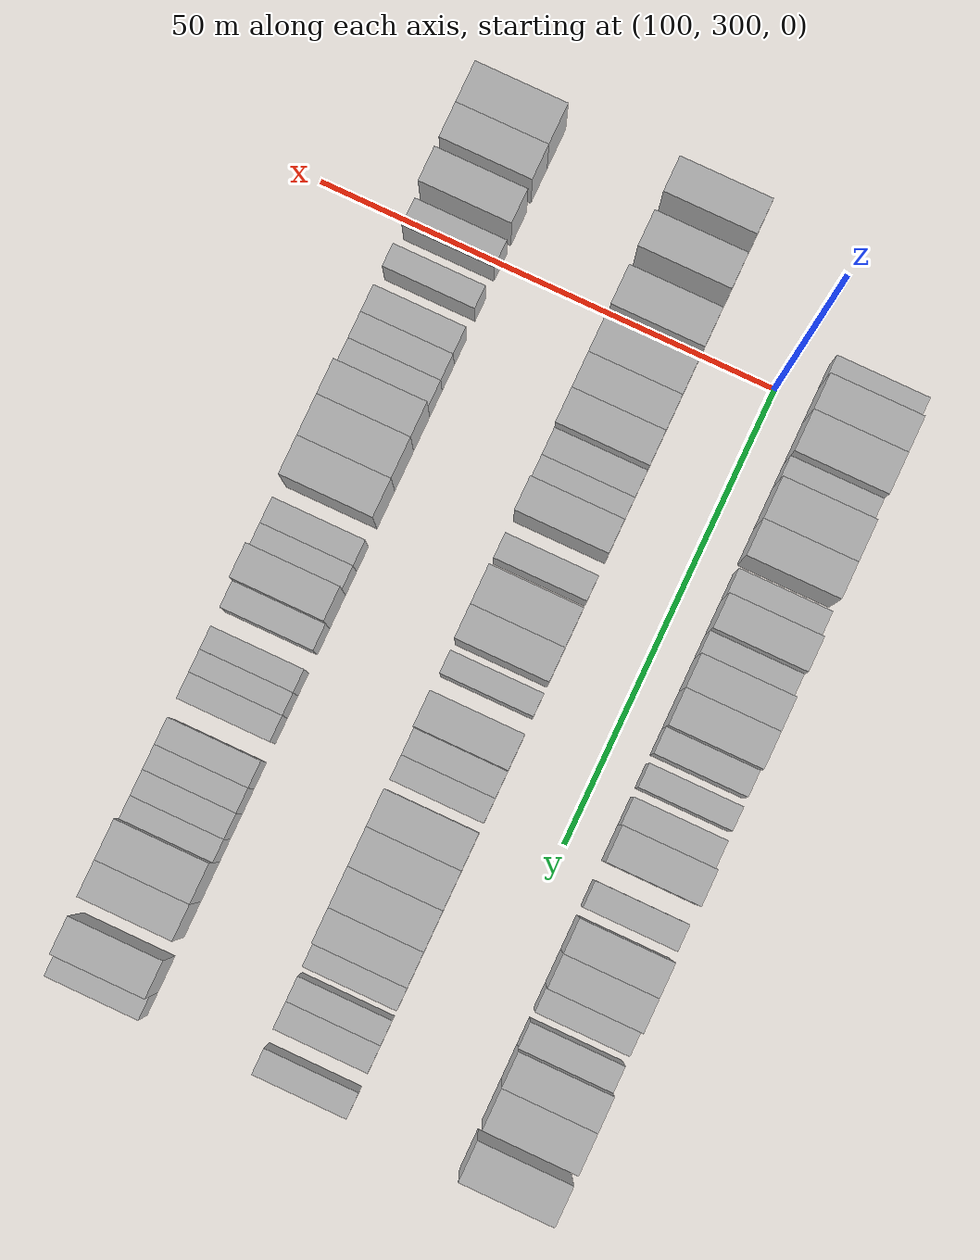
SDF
<sdf version="1.6">
 <world name="default">
  <model name="building_708">
   <static>1</static>
   <pose>91.0000 296.8521 0 0.000000 0.000000 0.000000</pose>
   <link name="link">
    <pose>0 0 3.00 0 0 0</pose>
    <collision name="collision"><geometry><box><size>10.0000 2.5621 6.0000</size></box></geometry></collision>
    <visual name="visual">
     <cast_shadows>0</cast_shadows>
     <geometry><box><size>10.0000 2.5621 6.0000</size></box></geometry>
     <material>
      <script>
       <uri>model://HANNAS_wall/materials/scripts</uri>
       <uri>model://HANNAS_wall/materials/textures</uri>
       <name>vrc/HANNAS_wall</name>
      </script>
     </material>
    </visual>
   </link>
  </model>
  <model name="building_709">
   <static>1</static>
   <pose>91.0000 300.0665 0 0.000000 0.000000 0.000000</pose>
   <link name="link">
    <pose>0 0 4.50 0 0 0</pose>
    <collision name="collision"><geometry><box><size>10.0000 3.8667 9.0000</size></box></geometry></collision>
    <visual name="visual">
     <cast_shadows>0</cast_shadows>
     <geometry><box><size>10.0000 3.8667 9.0000</size></box></geometry>
     <material>
      <script>
       <uri>model://HANNAS_wall/materials/scripts</uri>
       <uri>model://HANNAS_wall/materials/textures</uri>
       <name>vrc/HANNAS_wall</name>
      </script>
     </material>
    </visual>
   </link>
  </model>
  <model name="building_710">
   <static>1</static>
   <pose>91.0000 304.2477 0 0.000000 0.000000 0.000000</pose>
   <link name="link">
    <pose>0 0 4.50 0 0 0</pose>
    <collision name="collision"><geometry><box><size>10.0000 4.4958 9.0000</size></box></geometry></collision>
    <visual name="visual">
     <cast_shadows>0</cast_shadows>
     <geometry><box><size>10.0000 4.4958 9.0000</size></box></geometry>
     <material>
      <script>
       <uri>model://HANNAS_wall/materials/scripts</uri>
       <uri>model://HANNAS_wall/materials/textures</uri>
       <name>vrc/HANNAS_wall</name>
      </script>
     </material>
    </visual>
   </link>
  </model>
  <model name="building_711">
   <static>1</static>
   <pose>91.0000 307.8393 0 0.000000 0.000000 0.000000</pose>
   <link name="link">
    <pose>0 0 3.00 0 0 0</pose>
    <collision name="collision"><geometry><box><size>10.0000 2.6875 6.0000</size></box></geometry></collision>
    <visual name="visual">
     <cast_shadows>0</cast_shadows>
     <geometry><box><size>10.0000 2.6875 6.0000</size></box></geometry>
     <material>
      <script>
       <uri>model://HANNAS_wall/materials/scripts</uri>
       <uri>model://HANNAS_wall/materials/textures</uri>
       <name>vrc/HANNAS_wall</name>
      </script>
     </material>
    </visual>
   </link>
  </model>
  <model name="building_712">
   <static>1</static>
   <pose>91.0000 311.4304 0 0.000000 0.000000 0.000000</pose>
   <link name="link">
    <pose>0 0 4.50 0 0 0</pose>
    <collision name="collision"><geometry><box><size>10.0000 4.4946 9.0000</size></box></geometry></collision>
    <visual name="visual">
     <cast_shadows>0</cast_shadows>
     <geometry><box><size>10.0000 4.4946 9.0000</size></box></geometry>
     <material>
      <script>
       <uri>model://HANNAS_wall/materials/scripts</uri>
       <uri>model://HANNAS_wall/materials/textures</uri>
       <name>vrc/HANNAS_wall</name>
      </script>
     </material>
    </visual>
   </link>
  </model>
  <model name="building_713">
   <static>1</static>
   <pose>91.0000 315.6574 0 0.000000 0.000000 0.000000</pose>
   <link name="link">
    <pose>0 0 4.50 0 0 0</pose>
    <collision name="collision"><geometry><box><size>10.0000 3.9595 9.0000</size></box></geometry></collision>
    <visual name="visual">
     <cast_shadows>0</cast_shadows>
     <geometry><box><size>10.0000 3.9595 9.0000</size></box></geometry>
     <material>
      <script>
       <uri>model://HANNAS_wall/materials/scripts</uri>
       <uri>model://HANNAS_wall/materials/textures</uri>
       <name>vrc/HANNAS_wall</name>
      </script>
     </material>
    </visual>
   </link>
  </model>
  <model name="building_714">
   <static>1</static>
   <pose>91.0000 320.1092 0 0.000000 0.000000 0.000000</pose>
   <link name="link">
    <pose>0 0 3.00 0 0 0</pose>
    <collision name="collision"><geometry><box><size>10.0000 2.9441 6.0000</size></box></geometry></collision>
    <visual name="visual">
     <cast_shadows>0</cast_shadows>
     <geometry><box><size>10.0000 2.9441 6.0000</size></box></geometry>
     <material>
      <script>
       <uri>model://HANNAS_wall/materials/scripts</uri>
       <uri>model://HANNAS_wall/materials/textures</uri>
       <name>vrc/HANNAS_wall</name>
      </script>
     </material>
    </visual>
   </link>
  </model>
  <model name="building_715">
   <static>1</static>
   <pose>91.0000 323.4557 0 0.000000 0.000000 0.000000</pose>
   <link name="link">
    <pose>0 0 4.50 0 0 0</pose>
    <collision name="collision"><geometry><box><size>10.0000 3.7491 9.0000</size></box></geometry></collision>
    <visual name="visual">
     <cast_shadows>0</cast_shadows>
     <geometry><box><size>10.0000 3.7491 9.0000</size></box></geometry>
     <material>
      <script>
       <uri>model://HANNAS_wall/materials/scripts</uri>
       <uri>model://HANNAS_wall/materials/textures</uri>
       <name>vrc/HANNAS_wall</name>
      </script>
     </material>
    </visual>
   </link>
  </model>
  <model name="building_716">
   <static>1</static>
   <pose>91.0000 326.6415 0 0.000000 0.000000 0.000000</pose>
   <link name="link">
    <pose>0 0 3.00 0 0 0</pose>
    <collision name="collision"><geometry><box><size>10.0000 2.6225 6.0000</size></box></geometry></collision>
    <visual name="visual">
     <cast_shadows>0</cast_shadows>
     <geometry><box><size>10.0000 2.6225 6.0000</size></box></geometry>
     <material>
      <script>
       <uri>model://HANNAS_wall/materials/scripts</uri>
       <uri>model://HANNAS_wall/materials/textures</uri>
       <name>vrc/HANNAS_wall</name>
      </script>
     </material>
    </visual>
   </link>
  </model>
  <model name="building_717">
   <static>1</static>
   <pose>91.0000 329.7681 0 0.000000 0.000000 0.000000</pose>
   <link name="link">
    <pose>0 0 4.50 0 0 0</pose>
    <collision name="collision"><geometry><box><size>10.0000 3.6307 9.0000</size></box></geometry></collision>
    <visual name="visual">
     <cast_shadows>0</cast_shadows>
     <geometry><box><size>10.0000 3.6307 9.0000</size></box></geometry>
     <material>
      <script>
       <uri>model://HANNAS_wall/materials/scripts</uri>
       <uri>model://HANNAS_wall/materials/textures</uri>
       <name>vrc/HANNAS_wall</name>
      </script>
     </material>
    </visual>
   </link>
  </model>
  <model name="building_718">
   <static>1</static>
   <pose>91.0000 333.5781 0 0.000000 0.000000 0.000000</pose>
   <link name="link">
    <pose>0 0 4.50 0 0 0</pose>
    <collision name="collision"><geometry><box><size>10.0000 3.9893 9.0000</size></box></geometry></collision>
    <visual name="visual">
     <cast_shadows>0</cast_shadows>
     <geometry><box><size>10.0000 3.9893 9.0000</size></box></geometry>
     <material>
      <script>
       <uri>model://HANNAS_wall/materials/scripts</uri>
       <uri>model://HANNAS_wall/materials/textures</uri>
       <name>vrc/HANNAS_wall</name>
      </script>
     </material>
    </visual>
   </link>
  </model>
  <model name="building_719">
   <static>1</static>
   <pose>91.0000 337.0053 0 0.000000 0.000000 0.000000</pose>
   <link name="link">
    <pose>0 0 3.00 0 0 0</pose>
    <collision name="collision"><geometry><box><size>10.0000 2.8651 6.0000</size></box></geometry></collision>
    <visual name="visual">
     <cast_shadows>0</cast_shadows>
     <geometry><box><size>10.0000 2.8651 6.0000</size></box></geometry>
     <material>
      <script>
       <uri>model://HANNAS_wall/materials/scripts</uri>
       <uri>model://HANNAS_wall/materials/textures</uri>
       <name>vrc/HANNAS_wall</name>
      </script>
     </material>
    </visual>
   </link>
  </model>
  <model name="building_720">
   <static>1</static>
   <pose>91.0000 340.7299 0 0.000000 0.000000 0.000000</pose>
   <link name="link">
    <pose>0 0 3.00 0 0 0</pose>
    <collision name="collision"><geometry><box><size>10.0000 2.5840 6.0000</size></box></geometry></collision>
    <visual name="visual">
     <cast_shadows>0</cast_shadows>
     <geometry><box><size>10.0000 2.5840 6.0000</size></box></geometry>
     <material>
      <script>
       <uri>model://HANNAS_wall/materials/scripts</uri>
       <uri>model://HANNAS_wall/materials/textures</uri>
       <name>vrc/HANNAS_wall</name>
      </script>
     </material>
    </visual>
   </link>
  </model>
  <model name="building_721">
   <static>1</static>
   <pose>91.0000 344.5193 0 0.000000 0.000000 0.000000</pose>
   <link name="link">
    <pose>0 0 3.00 0 0 0</pose>
    <collision name="collision"><geometry><box><size>10.0000 2.9948 6.0000</size></box></geometry></collision>
    <visual name="visual">
     <cast_shadows>0</cast_shadows>
     <geometry><box><size>10.0000 2.9948 6.0000</size></box></geometry>
     <material>
      <script>
       <uri>model://HANNAS_wall/materials/scripts</uri>
       <uri>model://HANNAS_wall/materials/textures</uri>
       <name>vrc/HANNAS_wall</name>
      </script>
     </material>
    </visual>
   </link>
  </model>
  <model name="building_722">
   <static>1</static>
   <pose>91.0000 347.9449 0 0.000000 0.000000 0.000000</pose>
   <link name="link">
    <pose>0 0 4.50 0 0 0</pose>
    <collision name="collision"><geometry><box><size>10.0000 3.8563 9.0000</size></box></geometry></collision>
    <visual name="visual">
     <cast_shadows>0</cast_shadows>
     <geometry><box><size>10.0000 3.8563 9.0000</size></box></geometry>
     <material>
      <script>
       <uri>model://HANNAS_wall/materials/scripts</uri>
       <uri>model://HANNAS_wall/materials/textures</uri>
       <name>vrc/HANNAS_wall</name>
      </script>
     </material>
    </visual>
   </link>
  </model>
  <model name="building_723">
   <static>1</static>
   <pose>91.0000 353.2836 0 0.000000 0.000000 0.000000</pose>
   <link name="link">
    <pose>0 0 3.00 0 0 0</pose>
    <collision name="collision"><geometry><box><size>10.0000 2.8212 6.0000</size></box></geometry></collision>
    <visual name="visual">
     <cast_shadows>0</cast_shadows>
     <geometry><box><size>10.0000 2.8212 6.0000</size></box></geometry>
     <material>
      <script>
       <uri>model://HANNAS_wall/materials/scripts</uri>
       <uri>model://HANNAS_wall/materials/textures</uri>
       <name>vrc/HANNAS_wall</name>
      </script>
     </material>
    </visual>
   </link>
  </model>
  <model name="building_724">
   <static>1</static>
   <pose>91.0000 357.5374 0 0.000000 0.000000 0.000000</pose>
   <link name="link">
    <pose>0 0 4.50 0 0 0</pose>
    <collision name="collision"><geometry><box><size>10.0000 3.6864 9.0000</size></box></geometry></collision>
    <visual name="visual">
     <cast_shadows>0</cast_shadows>
     <geometry><box><size>10.0000 3.6864 9.0000</size></box></geometry>
     <material>
      <script>
       <uri>model://HANNAS_wall/materials/scripts</uri>
       <uri>model://HANNAS_wall/materials/textures</uri>
       <name>vrc/HANNAS_wall</name>
      </script>
     </material>
    </visual>
   </link>
  </model>
  <model name="building_725">
   <static>1</static>
   <pose>91.0000 361.1887 0 0.000000 0.000000 0.000000</pose>
   <link name="link">
    <pose>0 0 4.50 0 0 0</pose>
    <collision name="collision"><geometry><box><size>10.0000 3.6162 9.0000</size></box></geometry></collision>
    <visual name="visual">
     <cast_shadows>0</cast_shadows>
     <geometry><box><size>10.0000 3.6162 9.0000</size></box></geometry>
     <material>
      <script>
       <uri>model://HANNAS_wall/materials/scripts</uri>
       <uri>model://HANNAS_wall/materials/textures</uri>
       <name>vrc/HANNAS_wall</name>
      </script>
     </material>
    </visual>
   </link>
  </model>
  <model name="building_726">
   <static>1</static>
   <pose>91.0000 364.3347 0 0.000000 0.000000 0.000000</pose>
   <link name="link">
    <pose>0 0 3.00 0 0 0</pose>
    <collision name="collision"><geometry><box><size>10.0000 2.6757 6.0000</size></box></geometry></collision>
    <visual name="visual">
     <cast_shadows>0</cast_shadows>
     <geometry><box><size>10.0000 2.6757 6.0000</size></box></geometry>
     <material>
      <script>
       <uri>model://HANNAS_wall/materials/scripts</uri>
       <uri>model://HANNAS_wall/materials/textures</uri>
       <name>vrc/HANNAS_wall</name>
      </script>
     </material>
    </visual>
   </link>
  </model>
  <model name="building_727">
   <static>1</static>
   <pose>91.0000 368.0712 0 0.000000 0.000000 0.000000</pose>
   <link name="link">
    <pose>0 0 3.00 0 0 0</pose>
    <collision name="collision"><geometry><box><size>10.0000 2.7973 6.0000</size></box></geometry></collision>
    <visual name="visual">
     <cast_shadows>0</cast_shadows>
     <geometry><box><size>10.0000 2.7973 6.0000</size></box></geometry>
     <material>
      <script>
       <uri>model://HANNAS_wall/materials/scripts</uri>
       <uri>model://HANNAS_wall/materials/textures</uri>
       <name>vrc/HANNAS_wall</name>
      </script>
     </material>
    </visual>
   </link>
  </model>
  <model name="building_728">
   <static>1</static>
   <pose>91.0000 371.3558 0 0.000000 0.000000 0.000000</pose>
   <link name="link">
    <pose>0 0 4.50 0 0 0</pose>
    <collision name="collision"><geometry><box><size>10.0000 3.7719 9.0000</size></box></geometry></collision>
    <visual name="visual">
     <cast_shadows>0</cast_shadows>
     <geometry><box><size>10.0000 3.7719 9.0000</size></box></geometry>
     <material>
      <script>
       <uri>model://HANNAS_wall/materials/scripts</uri>
       <uri>model://HANNAS_wall/materials/textures</uri>
       <name>vrc/HANNAS_wall</name>
      </script>
     </material>
    </visual>
   </link>
  </model>
  <model name="building_729">
   <static>1</static>
   <pose>91.0000 375.4161 0 0.000000 0.000000 0.000000</pose>
   <link name="link">
    <pose>0 0 4.50 0 0 0</pose>
    <collision name="collision"><geometry><box><size>10.0000 4.3486 9.0000</size></box></geometry></collision>
    <visual name="visual">
     <cast_shadows>0</cast_shadows>
     <geometry><box><size>10.0000 4.3486 9.0000</size></box></geometry>
     <material>
      <script>
       <uri>model://HANNAS_wall/materials/scripts</uri>
       <uri>model://HANNAS_wall/materials/textures</uri>
       <name>vrc/HANNAS_wall</name>
      </script>
     </material>
    </visual>
   </link>
  </model>
  <model name="building_730">
   <static>1</static>
   <pose>91.0000 380.7305 0 0.000000 0.000000 0.000000</pose>
   <link name="link">
    <pose>0 0 4.50 0 0 0</pose>
    <collision name="collision"><geometry><box><size>10.0000 4.2802 9.0000</size></box></geometry></collision>
    <visual name="visual">
     <cast_shadows>0</cast_shadows>
     <geometry><box><size>10.0000 4.2802 9.0000</size></box></geometry>
     <material>
      <script>
       <uri>model://HANNAS_wall/materials/scripts</uri>
       <uri>model://HANNAS_wall/materials/textures</uri>
       <name>vrc/HANNAS_wall</name>
      </script>
     </material>
    </visual>
   </link>
  </model>
  <model name="building_896">
   <static>1</static>
   <pose>113.0000 286.8358 0 0.000000 0.000000 0.000000</pose>
   <link name="link">
    <pose>0 0 4.50 0 0 0</pose>
    <collision name="collision"><geometry><box><size>10.0000 3.8549 9.0000</size></box></geometry></collision>
    <visual name="visual">
     <cast_shadows>0</cast_shadows>
     <geometry><box><size>10.0000 3.8549 9.0000</size></box></geometry>
     <material>
      <script>
       <uri>model://HANNAS_wall/materials/scripts</uri>
       <uri>model://HANNAS_wall/materials/textures</uri>
       <name>vrc/HANNAS_wall</name>
      </script>
     </material>
    </visual>
   </link>
  </model>
  <model name="building_897">
   <static>1</static>
   <pose>113.0000 292.7214 0 0.000000 0.000000 0.000000</pose>
   <link name="link">
    <pose>0 0 4.50 0 0 0</pose>
    <collision name="collision"><geometry><box><size>10.0000 3.9163 9.0000</size></box></geometry></collision>
    <visual name="visual">
     <cast_shadows>0</cast_shadows>
     <geometry><box><size>10.0000 3.9163 9.0000</size></box></geometry>
     <material>
      <script>
       <uri>model://HANNAS_wall/materials/scripts</uri>
       <uri>model://HANNAS_wall/materials/textures</uri>
       <name>vrc/HANNAS_wall</name>
      </script>
     </material>
    </visual>
   </link>
  </model>
  <model name="building_898">
   <static>1</static>
   <pose>113.0000 298.8167 0 0.000000 0.000000 0.000000</pose>
   <link name="link">
    <pose>0 0 4.50 0 0 0</pose>
    <collision name="collision"><geometry><box><size>10.0000 4.2744 9.0000</size></box></geometry></collision>
    <visual name="visual">
     <cast_shadows>0</cast_shadows>
     <geometry><box><size>10.0000 4.2744 9.0000</size></box></geometry>
     <material>
      <script>
       <uri>model://HANNAS_wall/materials/scripts</uri>
       <uri>model://HANNAS_wall/materials/textures</uri>
       <name>vrc/HANNAS_wall</name>
      </script>
     </material>
    </visual>
   </link>
  </model>
  <model name="building_899">
   <static>1</static>
   <pose>113.0000 304.0137 0 0.000000 0.000000 0.000000</pose>
   <link name="link">
    <pose>0 0 4.50 0 0 0</pose>
    <collision name="collision"><geometry><box><size>10.0000 4.1195 9.0000</size></box></geometry></collision>
    <visual name="visual">
     <cast_shadows>0</cast_shadows>
     <geometry><box><size>10.0000 4.1195 9.0000</size></box></geometry>
     <material>
      <script>
       <uri>model://HANNAS_wall/materials/scripts</uri>
       <uri>model://HANNAS_wall/materials/textures</uri>
       <name>vrc/HANNAS_wall</name>
      </script>
     </material>
    </visual>
   </link>
  </model>
  <model name="building_900">
   <static>1</static>
   <pose>113.0000 307.9884 0 0.000000 0.000000 0.000000</pose>
   <link name="link">
    <pose>0 0 4.50 0 0 0</pose>
    <collision name="collision"><geometry><box><size>10.0000 3.8298 9.0000</size></box></geometry></collision>
    <visual name="visual">
     <cast_shadows>0</cast_shadows>
     <geometry><box><size>10.0000 3.8298 9.0000</size></box></geometry>
     <material>
      <script>
       <uri>model://HANNAS_wall/materials/scripts</uri>
       <uri>model://HANNAS_wall/materials/textures</uri>
       <name>vrc/HANNAS_wall</name>
      </script>
     </material>
    </visual>
   </link>
  </model>
  <model name="building_901">
   <static>1</static>
   <pose>113.0000 311.7919 0 0.000000 0.000000 0.000000</pose>
   <link name="link">
    <pose>0 0 4.50 0 0 0</pose>
    <collision name="collision"><geometry><box><size>10.0000 3.7772 9.0000</size></box></geometry></collision>
    <visual name="visual">
     <cast_shadows>0</cast_shadows>
     <geometry><box><size>10.0000 3.7772 9.0000</size></box></geometry>
     <material>
      <script>
       <uri>model://HANNAS_wall/materials/scripts</uri>
       <uri>model://HANNAS_wall/materials/textures</uri>
       <name>vrc/HANNAS_wall</name>
      </script>
     </material>
    </visual>
   </link>
  </model>
  <model name="building_902">
   <static>1</static>
   <pose>113.0000 315.1520 0 0.000000 0.000000 0.000000</pose>
   <link name="link">
    <pose>0 0 3.00 0 0 0</pose>
    <collision name="collision"><geometry><box><size>10.0000 2.9431 6.0000</size></box></geometry></collision>
    <visual name="visual">
     <cast_shadows>0</cast_shadows>
     <geometry><box><size>10.0000 2.9431 6.0000</size></box></geometry>
     <material>
      <script>
       <uri>model://HANNAS_wall/materials/scripts</uri>
       <uri>model://HANNAS_wall/materials/textures</uri>
       <name>vrc/HANNAS_wall</name>
      </script>
     </material>
    </visual>
   </link>
  </model>
  <model name="building_903">
   <static>1</static>
   <pose>113.0000 318.0092 0 0.000000 0.000000 0.000000</pose>
   <link name="link">
    <pose>0 0 3.00 0 0 0</pose>
    <collision name="collision"><geometry><box><size>10.0000 2.7714 6.0000</size></box></geometry></collision>
    <visual name="visual">
     <cast_shadows>0</cast_shadows>
     <geometry><box><size>10.0000 2.7714 6.0000</size></box></geometry>
     <material>
      <script>
       <uri>model://HANNAS_wall/materials/scripts</uri>
       <uri>model://HANNAS_wall/materials/textures</uri>
       <name>vrc/HANNAS_wall</name>
      </script>
     </material>
    </visual>
   </link>
  </model>
  <model name="building_904">
   <static>1</static>
   <pose>113.0000 321.2205 0 0.000000 0.000000 0.000000</pose>
   <link name="link">
    <pose>0 0 4.50 0 0 0</pose>
    <collision name="collision"><geometry><box><size>10.0000 3.6511 9.0000</size></box></geometry></collision>
    <visual name="visual">
     <cast_shadows>0</cast_shadows>
     <geometry><box><size>10.0000 3.6511 9.0000</size></box></geometry>
     <material>
      <script>
       <uri>model://HANNAS_wall/materials/scripts</uri>
       <uri>model://HANNAS_wall/materials/textures</uri>
       <name>vrc/HANNAS_wall</name>
      </script>
     </material>
    </visual>
   </link>
  </model>
  <model name="building_905">
   <static>1</static>
   <pose>113.0000 326.4089 0 0.000000 0.000000 0.000000</pose>
   <link name="link">
    <pose>0 0 3.00 0 0 0</pose>
    <collision name="collision"><geometry><box><size>10.0000 2.7259 6.0000</size></box></geometry></collision>
    <visual name="visual">
     <cast_shadows>0</cast_shadows>
     <geometry><box><size>10.0000 2.7259 6.0000</size></box></geometry>
     <material>
      <script>
       <uri>model://HANNAS_wall/materials/scripts</uri>
       <uri>model://HANNAS_wall/materials/textures</uri>
       <name>vrc/HANNAS_wall</name>
      </script>
     </material>
    </visual>
   </link>
  </model>
  <model name="building_906">
   <static>1</static>
   <pose>113.0000 330.8879 0 0.000000 0.000000 0.000000</pose>
   <link name="link">
    <pose>0 0 4.50 0 0 0</pose>
    <collision name="collision"><geometry><box><size>10.0000 4.2319 9.0000</size></box></geometry></collision>
    <visual name="visual">
     <cast_shadows>0</cast_shadows>
     <geometry><box><size>10.0000 4.2319 9.0000</size></box></geometry>
     <material>
      <script>
       <uri>model://HANNAS_wall/materials/scripts</uri>
       <uri>model://HANNAS_wall/materials/textures</uri>
       <name>vrc/HANNAS_wall</name>
      </script>
     </material>
    </visual>
   </link>
  </model>
  <model name="building_907">
   <static>1</static>
   <pose>113.0000 334.8253 0 0.000000 0.000000 0.000000</pose>
   <link name="link">
    <pose>0 0 4.50 0 0 0</pose>
    <collision name="collision"><geometry><box><size>10.0000 3.6429 9.0000</size></box></geometry></collision>
    <visual name="visual">
     <cast_shadows>0</cast_shadows>
     <geometry><box><size>10.0000 3.6429 9.0000</size></box></geometry>
     <material>
      <script>
       <uri>model://HANNAS_wall/materials/scripts</uri>
       <uri>model://HANNAS_wall/materials/textures</uri>
       <name>vrc/HANNAS_wall</name>
      </script>
     </material>
    </visual>
   </link>
  </model>
  <model name="building_908">
   <static>1</static>
   <pose>113.0000 338.8871 0 0.000000 0.000000 0.000000</pose>
   <link name="link">
    <pose>0 0 3.00 0 0 0</pose>
    <collision name="collision"><geometry><box><size>10.0000 2.4807 6.0000</size></box></geometry></collision>
    <visual name="visual">
     <cast_shadows>0</cast_shadows>
     <geometry><box><size>10.0000 2.4807 6.0000</size></box></geometry>
     <material>
      <script>
       <uri>model://HANNAS_wall/materials/scripts</uri>
       <uri>model://HANNAS_wall/materials/textures</uri>
       <name>vrc/HANNAS_wall</name>
      </script>
     </material>
    </visual>
   </link>
  </model>
  <model name="building_909">
   <static>1</static>
   <pose>113.0000 344.0310 0 0.000000 0.000000 0.000000</pose>
   <link name="link">
    <pose>0 0 4.50 0 0 0</pose>
    <collision name="collision"><geometry><box><size>10.0000 3.8071 9.0000</size></box></geometry></collision>
    <visual name="visual">
     <cast_shadows>0</cast_shadows>
     <geometry><box><size>10.0000 3.8071 9.0000</size></box></geometry>
     <material>
      <script>
       <uri>model://HANNAS_wall/materials/scripts</uri>
       <uri>model://HANNAS_wall/materials/textures</uri>
       <name>vrc/HANNAS_wall</name>
      </script>
     </material>
    </visual>
   </link>
  </model>
  <model name="building_910">
   <static>1</static>
   <pose>113.0000 347.3745 0 0.000000 0.000000 0.000000</pose>
   <link name="link">
    <pose>0 0 3.00 0 0 0</pose>
    <collision name="collision"><geometry><box><size>10.0000 2.8799 6.0000</size></box></geometry></collision>
    <visual name="visual">
     <cast_shadows>0</cast_shadows>
     <geometry><box><size>10.0000 2.8799 6.0000</size></box></geometry>
     <material>
      <script>
       <uri>model://HANNAS_wall/materials/scripts</uri>
       <uri>model://HANNAS_wall/materials/textures</uri>
       <name>vrc/HANNAS_wall</name>
      </script>
     </material>
    </visual>
   </link>
  </model>
  <model name="building_911">
   <static>1</static>
   <pose>113.0000 350.1322 0 0.000000 0.000000 0.000000</pose>
   <link name="link">
    <pose>0 0 3.00 0 0 0</pose>
    <collision name="collision"><geometry><box><size>10.0000 2.6356 6.0000</size></box></geometry></collision>
    <visual name="visual">
     <cast_shadows>0</cast_shadows>
     <geometry><box><size>10.0000 2.6356 6.0000</size></box></geometry>
     <material>
      <script>
       <uri>model://HANNAS_wall/materials/scripts</uri>
       <uri>model://HANNAS_wall/materials/textures</uri>
       <name>vrc/HANNAS_wall</name>
      </script>
     </material>
    </visual>
   </link>
  </model>
  <model name="building_912">
   <static>1</static>
   <pose>113.0000 354.4297 0 0.000000 0.000000 0.000000</pose>
   <link name="link">
    <pose>0 0 4.50 0 0 0</pose>
    <collision name="collision"><geometry><box><size>10.0000 3.9593 9.0000</size></box></geometry></collision>
    <visual name="visual">
     <cast_shadows>0</cast_shadows>
     <geometry><box><size>10.0000 3.9593 9.0000</size></box></geometry>
     <material>
      <script>
       <uri>model://HANNAS_wall/materials/scripts</uri>
       <uri>model://HANNAS_wall/materials/textures</uri>
       <name>vrc/HANNAS_wall</name>
      </script>
     </material>
    </visual>
   </link>
  </model>
  <model name="building_913">
   <static>1</static>
   <pose>113.0000 358.4834 0 0.000000 0.000000 0.000000</pose>
   <link name="link">
    <pose>0 0 4.50 0 0 0</pose>
    <collision name="collision"><geometry><box><size>10.0000 4.1481 9.0000</size></box></geometry></collision>
    <visual name="visual">
     <cast_shadows>0</cast_shadows>
     <geometry><box><size>10.0000 4.1481 9.0000</size></box></geometry>
     <material>
      <script>
       <uri>model://HANNAS_wall/materials/scripts</uri>
       <uri>model://HANNAS_wall/materials/textures</uri>
       <name>vrc/HANNAS_wall</name>
      </script>
     </material>
    </visual>
   </link>
  </model>
  <model name="building_914">
   <static>1</static>
   <pose>113.0000 362.7015 0 0.000000 0.000000 0.000000</pose>
   <link name="link">
    <pose>0 0 4.50 0 0 0</pose>
    <collision name="collision"><geometry><box><size>10.0000 4.2881 9.0000</size></box></geometry></collision>
    <visual name="visual">
     <cast_shadows>0</cast_shadows>
     <geometry><box><size>10.0000 4.2881 9.0000</size></box></geometry>
     <material>
      <script>
       <uri>model://HANNAS_wall/materials/scripts</uri>
       <uri>model://HANNAS_wall/materials/textures</uri>
       <name>vrc/HANNAS_wall</name>
      </script>
     </material>
    </visual>
   </link>
  </model>
  <model name="building_915">
   <static>1</static>
   <pose>113.0000 366.7026 0 0.000000 0.000000 0.000000</pose>
   <link name="link">
    <pose>0 0 4.50 0 0 0</pose>
    <collision name="collision"><geometry><box><size>10.0000 3.7140 9.0000</size></box></geometry></collision>
    <visual name="visual">
     <cast_shadows>0</cast_shadows>
     <geometry><box><size>10.0000 3.7140 9.0000</size></box></geometry>
     <material>
      <script>
       <uri>model://HANNAS_wall/materials/scripts</uri>
       <uri>model://HANNAS_wall/materials/textures</uri>
       <name>vrc/HANNAS_wall</name>
      </script>
     </material>
    </visual>
   </link>
  </model>
  <model name="building_916">
   <static>1</static>
   <pose>113.0000 369.8541 0 0.000000 0.000000 0.000000</pose>
   <link name="link">
    <pose>0 0 3.00 0 0 0</pose>
    <collision name="collision"><geometry><box><size>10.0000 2.5890 6.0000</size></box></geometry></collision>
    <visual name="visual">
     <cast_shadows>0</cast_shadows>
     <geometry><box><size>10.0000 2.5890 6.0000</size></box></geometry>
     <material>
      <script>
       <uri>model://HANNAS_wall/materials/scripts</uri>
       <uri>model://HANNAS_wall/materials/textures</uri>
       <name>vrc/HANNAS_wall</name>
      </script>
     </material>
    </visual>
   </link>
  </model>
  <model name="building_917">
   <static>1</static>
   <pose>113.0000 373.4628 0 0.000000 0.000000 0.000000</pose>
   <link name="link">
    <pose>0 0 3.00 0 0 0</pose>
    <collision name="collision"><geometry><box><size>10.0000 2.6285 6.0000</size></box></geometry></collision>
    <visual name="visual">
     <cast_shadows>0</cast_shadows>
     <geometry><box><size>10.0000 2.6285 6.0000</size></box></geometry>
     <material>
      <script>
       <uri>model://HANNAS_wall/materials/scripts</uri>
       <uri>model://HANNAS_wall/materials/textures</uri>
       <name>vrc/HANNAS_wall</name>
      </script>
     </material>
    </visual>
   </link>
  </model>
  <model name="building_918">
   <static>1</static>
   <pose>113.0000 376.2227 0 0.000000 0.000000 0.000000</pose>
   <link name="link">
    <pose>0 0 3.00 0 0 0</pose>
    <collision name="collision"><geometry><box><size>10.0000 2.8913 6.0000</size></box></geometry></collision>
    <visual name="visual">
     <cast_shadows>0</cast_shadows>
     <geometry><box><size>10.0000 2.8913 6.0000</size></box></geometry>
     <material>
      <script>
       <uri>model://HANNAS_wall/materials/scripts</uri>
       <uri>model://HANNAS_wall/materials/textures</uri>
       <name>vrc/HANNAS_wall</name>
      </script>
     </material>
    </visual>
   </link>
  </model>
  <model name="building_919">
   <static>1</static>
   <pose>113.0000 381.0392 0 0.000000 0.000000 0.000000</pose>
   <link name="link">
    <pose>0 0 3.00 0 0 0</pose>
    <collision name="collision"><geometry><box><size>10.0000 2.7417 6.0000</size></box></geometry></collision>
    <visual name="visual">
     <cast_shadows>0</cast_shadows>
     <geometry><box><size>10.0000 2.7417 6.0000</size></box></geometry>
     <material>
      <script>
       <uri>model://HANNAS_wall/materials/scripts</uri>
       <uri>model://HANNAS_wall/materials/textures</uri>
       <name>vrc/HANNAS_wall</name>
      </script>
     </material>
    </visual>
   </link>
  </model>
  <model name="building_1080">
   <static>1</static>
   <pose>135.0000 286.9977 0 0.000000 0.000000 0.000000</pose>
   <link name="link">
    <pose>0 0 4.50 0 0 0</pose>
    <collision name="collision"><geometry><box><size>10.0000 4.4913 9.0000</size></box></geometry></collision>
    <visual name="visual">
     <cast_shadows>0</cast_shadows>
     <geometry><box><size>10.0000 4.4913 9.0000</size></box></geometry>
     <material>
      <script>
       <uri>model://HANNAS_wall/materials/scripts</uri>
       <uri>model://HANNAS_wall/materials/textures</uri>
       <name>vrc/HANNAS_wall</name>
      </script>
     </material>
    </visual>
   </link>
  </model>
  <model name="building_1081">
   <static>1</static>
   <pose>135.0000 291.1677 0 0.000000 0.000000 0.000000</pose>
   <link name="link">
    <pose>0 0 4.50 0 0 0</pose>
    <collision name="collision"><geometry><box><size>10.0000 3.8488 9.0000</size></box></geometry></collision>
    <visual name="visual">
     <cast_shadows>0</cast_shadows>
     <geometry><box><size>10.0000 3.8488 9.0000</size></box></geometry>
     <material>
      <script>
       <uri>model://HANNAS_wall/materials/scripts</uri>
       <uri>model://HANNAS_wall/materials/textures</uri>
       <name>vrc/HANNAS_wall</name>
      </script>
     </material>
    </visual>
   </link>
  </model>
  <model name="building_1082">
   <static>1</static>
   <pose>135.0000 295.9693 0 0.000000 0.000000 0.000000</pose>
   <link name="link">
    <pose>0 0 4.50 0 0 0</pose>
    <collision name="collision"><geometry><box><size>10.0000 3.7543 9.0000</size></box></geometry></collision>
    <visual name="visual">
     <cast_shadows>0</cast_shadows>
     <geometry><box><size>10.0000 3.7543 9.0000</size></box></geometry>
     <material>
      <script>
       <uri>model://HANNAS_wall/materials/scripts</uri>
       <uri>model://HANNAS_wall/materials/textures</uri>
       <name>vrc/HANNAS_wall</name>
      </script>
     </material>
    </visual>
   </link>
  </model>
  <model name="building_1083">
   <static>1</static>
   <pose>135.0000 300.3451 0 0.000000 0.000000 0.000000</pose>
   <link name="link">
    <pose>0 0 3.00 0 0 0</pose>
    <collision name="collision"><geometry><box><size>10.0000 2.9974 6.0000</size></box></geometry></collision>
    <visual name="visual">
     <cast_shadows>0</cast_shadows>
     <geometry><box><size>10.0000 2.9974 6.0000</size></box></geometry>
     <material>
      <script>
       <uri>model://HANNAS_wall/materials/scripts</uri>
       <uri>model://HANNAS_wall/materials/textures</uri>
       <name>vrc/HANNAS_wall</name>
      </script>
     </material>
    </visual>
   </link>
  </model>
  <model name="building_1084">
   <static>1</static>
   <pose>135.0000 305.0972 0 0.000000 0.000000 0.000000</pose>
   <link name="link">
    <pose>0 0 3.00 0 0 0</pose>
    <collision name="collision"><geometry><box><size>10.0000 2.5069 6.0000</size></box></geometry></collision>
    <visual name="visual">
     <cast_shadows>0</cast_shadows>
     <geometry><box><size>10.0000 2.5069 6.0000</size></box></geometry>
     <material>
      <script>
       <uri>model://HANNAS_wall/materials/scripts</uri>
       <uri>model://HANNAS_wall/materials/textures</uri>
       <name>vrc/HANNAS_wall</name>
      </script>
     </material>
    </visual>
   </link>
  </model>
  <model name="building_1085">
   <static>1</static>
   <pose>135.0000 309.8240 0 0.000000 0.000000 0.000000</pose>
   <link name="link">
    <pose>0 0 3.00 0 0 0</pose>
    <collision name="collision"><geometry><box><size>10.0000 2.9467 6.0000</size></box></geometry></collision>
    <visual name="visual">
     <cast_shadows>0</cast_shadows>
     <geometry><box><size>10.0000 2.9467 6.0000</size></box></geometry>
     <material>
      <script>
       <uri>model://HANNAS_wall/materials/scripts</uri>
       <uri>model://HANNAS_wall/materials/textures</uri>
       <name>vrc/HANNAS_wall</name>
      </script>
     </material>
    </visual>
   </link>
  </model>
  <model name="building_1086">
   <static>1</static>
   <pose>135.0000 312.7373 0 0.000000 0.000000 0.000000</pose>
   <link name="link">
    <pose>0 0 3.00 0 0 0</pose>
    <collision name="collision"><geometry><box><size>10.0000 2.8799 6.0000</size></box></geometry></collision>
    <visual name="visual">
     <cast_shadows>0</cast_shadows>
     <geometry><box><size>10.0000 2.8799 6.0000</size></box></geometry>
     <material>
      <script>
       <uri>model://HANNAS_wall/materials/scripts</uri>
       <uri>model://HANNAS_wall/materials/textures</uri>
       <name>vrc/HANNAS_wall</name>
      </script>
     </material>
    </visual>
   </link>
  </model>
  <model name="building_1087">
   <static>1</static>
   <pose>135.0000 315.6302 0 0.000000 0.000000 0.000000</pose>
   <link name="link">
    <pose>0 0 3.00 0 0 0</pose>
    <collision name="collision"><geometry><box><size>10.0000 2.9059 6.0000</size></box></geometry></collision>
    <visual name="visual">
     <cast_shadows>0</cast_shadows>
     <geometry><box><size>10.0000 2.9059 6.0000</size></box></geometry>
     <material>
      <script>
       <uri>model://HANNAS_wall/materials/scripts</uri>
       <uri>model://HANNAS_wall/materials/textures</uri>
       <name>vrc/HANNAS_wall</name>
      </script>
     </material>
    </visual>
   </link>
  </model>
  <model name="building_1088">
   <static>1</static>
   <pose>135.0000 318.9728 0 0.000000 0.000000 0.000000</pose>
   <link name="link">
    <pose>0 0 4.50 0 0 0</pose>
    <collision name="collision"><geometry><box><size>10.0000 3.7793 9.0000</size></box></geometry></collision>
    <visual name="visual">
     <cast_shadows>0</cast_shadows>
     <geometry><box><size>10.0000 3.7793 9.0000</size></box></geometry>
     <material>
      <script>
       <uri>model://HANNAS_wall/materials/scripts</uri>
       <uri>model://HANNAS_wall/materials/textures</uri>
       <name>vrc/HANNAS_wall</name>
      </script>
     </material>
    </visual>
   </link>
  </model>
  <model name="building_1089">
   <static>1</static>
   <pose>135.0000 323.0751 0 0.000000 0.000000 0.000000</pose>
   <link name="link">
    <pose>0 0 4.50 0 0 0</pose>
    <collision name="collision"><geometry><box><size>10.0000 4.4253 9.0000</size></box></geometry></collision>
    <visual name="visual">
     <cast_shadows>0</cast_shadows>
     <geometry><box><size>10.0000 4.4253 9.0000</size></box></geometry>
     <material>
      <script>
       <uri>model://HANNAS_wall/materials/scripts</uri>
       <uri>model://HANNAS_wall/materials/textures</uri>
       <name>vrc/HANNAS_wall</name>
      </script>
     </material>
    </visual>
   </link>
  </model>
  <model name="building_1090">
   <static>1</static>
   <pose>135.0000 327.3731 0 0.000000 0.000000 0.000000</pose>
   <link name="link">
    <pose>0 0 4.50 0 0 0</pose>
    <collision name="collision"><geometry><box><size>10.0000 4.1705 9.0000</size></box></geometry></collision>
    <visual name="visual">
     <cast_shadows>0</cast_shadows>
     <geometry><box><size>10.0000 4.1705 9.0000</size></box></geometry>
     <material>
      <script>
       <uri>model://HANNAS_wall/materials/scripts</uri>
       <uri>model://HANNAS_wall/materials/textures</uri>
       <name>vrc/HANNAS_wall</name>
      </script>
     </material>
    </visual>
   </link>
  </model>
  <model name="building_1091">
   <static>1</static>
   <pose>135.0000 332.8423 0 0.000000 0.000000 0.000000</pose>
   <link name="link">
    <pose>0 0 3.00 0 0 0</pose>
    <collision name="collision"><geometry><box><size>10.0000 2.7679 6.0000</size></box></geometry></collision>
    <visual name="visual">
     <cast_shadows>0</cast_shadows>
     <geometry><box><size>10.0000 2.7679 6.0000</size></box></geometry>
     <material>
      <script>
       <uri>model://HANNAS_wall/materials/scripts</uri>
       <uri>model://HANNAS_wall/materials/textures</uri>
       <name>vrc/HANNAS_wall</name>
      </script>
     </material>
    </visual>
   </link>
  </model>
  <model name="building_1092">
   <static>1</static>
   <pose>135.0000 335.4991 0 0.000000 0.000000 0.000000</pose>
   <link name="link">
    <pose>0 0 3.00 0 0 0</pose>
    <collision name="collision"><geometry><box><size>10.0000 2.5458 6.0000</size></box></geometry></collision>
    <visual name="visual">
     <cast_shadows>0</cast_shadows>
     <geometry><box><size>10.0000 2.5458 6.0000</size></box></geometry>
     <material>
      <script>
       <uri>model://HANNAS_wall/materials/scripts</uri>
       <uri>model://HANNAS_wall/materials/textures</uri>
       <name>vrc/HANNAS_wall</name>
      </script>
     </material>
    </visual>
   </link>
  </model>
  <model name="building_1093">
   <static>1</static>
   <pose>135.0000 338.6135 0 0.000000 0.000000 0.000000</pose>
   <link name="link">
    <pose>0 0 4.50 0 0 0</pose>
    <collision name="collision"><geometry><box><size>10.0000 3.6830 9.0000</size></box></geometry></collision>
    <visual name="visual">
     <cast_shadows>0</cast_shadows>
     <geometry><box><size>10.0000 3.6830 9.0000</size></box></geometry>
     <material>
      <script>
       <uri>model://HANNAS_wall/materials/scripts</uri>
       <uri>model://HANNAS_wall/materials/textures</uri>
       <name>vrc/HANNAS_wall</name>
      </script>
     </material>
    </visual>
   </link>
  </model>
  <model name="building_1094">
   <static>1</static>
   <pose>135.0000 341.8896 0 0.000000 0.000000 0.000000</pose>
   <link name="link">
    <pose>0 0 3.00 0 0 0</pose>
    <collision name="collision"><geometry><box><size>10.0000 2.8693 6.0000</size></box></geometry></collision>
    <visual name="visual">
     <cast_shadows>0</cast_shadows>
     <geometry><box><size>10.0000 2.8693 6.0000</size></box></geometry>
     <material>
      <script>
       <uri>model://HANNAS_wall/materials/scripts</uri>
       <uri>model://HANNAS_wall/materials/textures</uri>
       <name>vrc/HANNAS_wall</name>
      </script>
     </material>
    </visual>
   </link>
  </model>
  <model name="building_1095">
   <static>1</static>
   <pose>135.0000 346.5664 0 0.000000 0.000000 0.000000</pose>
   <link name="link">
    <pose>0 0 3.00 0 0 0</pose>
    <collision name="collision"><geometry><box><size>10.0000 2.4842 6.0000</size></box></geometry></collision>
    <visual name="visual">
     <cast_shadows>0</cast_shadows>
     <geometry><box><size>10.0000 2.4842 6.0000</size></box></geometry>
     <material>
      <script>
       <uri>model://HANNAS_wall/materials/scripts</uri>
       <uri>model://HANNAS_wall/materials/textures</uri>
       <name>vrc/HANNAS_wall</name>
      </script>
     </material>
    </visual>
   </link>
  </model>
  <model name="building_1096">
   <static>1</static>
   <pose>135.0000 349.0227 0 0.000000 0.000000 0.000000</pose>
   <link name="link">
    <pose>0 0 3.00 0 0 0</pose>
    <collision name="collision"><geometry><box><size>10.0000 2.4283 6.0000</size></box></geometry></collision>
    <visual name="visual">
     <cast_shadows>0</cast_shadows>
     <geometry><box><size>10.0000 2.4283 6.0000</size></box></geometry>
     <material>
      <script>
       <uri>model://HANNAS_wall/materials/scripts</uri>
       <uri>model://HANNAS_wall/materials/textures</uri>
       <name>vrc/HANNAS_wall</name>
      </script>
     </material>
    </visual>
   </link>
  </model>
  <model name="building_1097">
   <static>1</static>
   <pose>135.0000 351.6433 0 0.000000 0.000000 0.000000</pose>
   <link name="link">
    <pose>0 0 3.00 0 0 0</pose>
    <collision name="collision"><geometry><box><size>10.0000 2.8129 6.0000</size></box></geometry></collision>
    <visual name="visual">
     <cast_shadows>0</cast_shadows>
     <geometry><box><size>10.0000 2.8129 6.0000</size></box></geometry>
     <material>
      <script>
       <uri>model://HANNAS_wall/materials/scripts</uri>
       <uri>model://HANNAS_wall/materials/textures</uri>
       <name>vrc/HANNAS_wall</name>
      </script>
     </material>
    </visual>
   </link>
  </model>
  <model name="building_1098">
   <static>1</static>
   <pose>135.0000 356.4965 0 0.000000 0.000000 0.000000</pose>
   <link name="link">
    <pose>0 0 3.00 0 0 0</pose>
    <collision name="collision"><geometry><box><size>10.0000 2.8936 6.0000</size></box></geometry></collision>
    <visual name="visual">
     <cast_shadows>0</cast_shadows>
     <geometry><box><size>10.0000 2.8936 6.0000</size></box></geometry>
     <material>
      <script>
       <uri>model://HANNAS_wall/materials/scripts</uri>
       <uri>model://HANNAS_wall/materials/textures</uri>
       <name>vrc/HANNAS_wall</name>
      </script>
     </material>
    </visual>
   </link>
  </model>
  <model name="building_1099">
   <static>1</static>
   <pose>135.0000 359.2772 0 0.000000 0.000000 0.000000</pose>
   <link name="link">
    <pose>0 0 3.00 0 0 0</pose>
    <collision name="collision"><geometry><box><size>10.0000 2.6677 6.0000</size></box></geometry></collision>
    <visual name="visual">
     <cast_shadows>0</cast_shadows>
     <geometry><box><size>10.0000 2.6677 6.0000</size></box></geometry>
     <material>
      <script>
       <uri>model://HANNAS_wall/materials/scripts</uri>
       <uri>model://HANNAS_wall/materials/textures</uri>
       <name>vrc/HANNAS_wall</name>
      </script>
     </material>
    </visual>
   </link>
  </model>
  <model name="building_1100">
   <static>1</static>
   <pose>135.0000 361.9926 0 0.000000 0.000000 0.000000</pose>
   <link name="link">
    <pose>0 0 3.00 0 0 0</pose>
    <collision name="collision"><geometry><box><size>10.0000 2.7632 6.0000</size></box></geometry></collision>
    <visual name="visual">
     <cast_shadows>0</cast_shadows>
     <geometry><box><size>10.0000 2.7632 6.0000</size></box></geometry>
     <material>
      <script>
       <uri>model://HANNAS_wall/materials/scripts</uri>
       <uri>model://HANNAS_wall/materials/textures</uri>
       <name>vrc/HANNAS_wall</name>
      </script>
     </material>
    </visual>
   </link>
  </model>
  <model name="building_1101">
   <static>1</static>
   <pose>135.0000 364.6094 0 0.000000 0.000000 0.000000</pose>
   <link name="link">
    <pose>0 0 3.00 0 0 0</pose>
    <collision name="collision"><geometry><box><size>10.0000 2.4703 6.0000</size></box></geometry></collision>
    <visual name="visual">
     <cast_shadows>0</cast_shadows>
     <geometry><box><size>10.0000 2.4703 6.0000</size></box></geometry>
     <material>
      <script>
       <uri>model://HANNAS_wall/materials/scripts</uri>
       <uri>model://HANNAS_wall/materials/textures</uri>
       <name>vrc/HANNAS_wall</name>
      </script>
     </material>
    </visual>
   </link>
  </model>
  <model name="building_1102">
   <static>1</static>
   <pose>135.0000 367.9864 0 0.000000 0.000000 0.000000</pose>
   <link name="link">
    <pose>0 0 4.50 0 0 0</pose>
    <collision name="collision"><geometry><box><size>10.0000 4.2838 9.0000</size></box></geometry></collision>
    <visual name="visual">
     <cast_shadows>0</cast_shadows>
     <geometry><box><size>10.0000 4.2838 9.0000</size></box></geometry>
     <material>
      <script>
       <uri>model://HANNAS_wall/materials/scripts</uri>
       <uri>model://HANNAS_wall/materials/textures</uri>
       <name>vrc/HANNAS_wall</name>
      </script>
     </material>
    </visual>
   </link>
  </model>
  <model name="building_1103">
   <static>1</static>
   <pose>135.0000 372.0442 0 0.000000 0.000000 0.000000</pose>
   <link name="link">
    <pose>0 0 4.50 0 0 0</pose>
    <collision name="collision"><geometry><box><size>10.0000 3.8319 9.0000</size></box></geometry></collision>
    <visual name="visual">
     <cast_shadows>0</cast_shadows>
     <geometry><box><size>10.0000 3.8319 9.0000</size></box></geometry>
     <material>
      <script>
       <uri>model://HANNAS_wall/materials/scripts</uri>
       <uri>model://HANNAS_wall/materials/textures</uri>
       <name>vrc/HANNAS_wall</name>
      </script>
     </material>
    </visual>
   </link>
  </model>
  <model name="building_1104">
   <static>1</static>
   <pose>135.0000 377.9407 0 0.000000 0.000000 0.000000</pose>
   <link name="link">
    <pose>0 0 4.50 0 0 0</pose>
    <collision name="collision"><geometry><box><size>10.0000 3.9611 9.0000</size></box></geometry></collision>
    <visual name="visual">
     <cast_shadows>0</cast_shadows>
     <geometry><box><size>10.0000 3.9611 9.0000</size></box></geometry>
     <material>
      <script>
       <uri>model://HANNAS_wall/materials/scripts</uri>
       <uri>model://HANNAS_wall/materials/textures</uri>
       <name>vrc/HANNAS_wall</name>
      </script>
     </material>
    </visual>
   </link>
  </model>
  <model name="building_1105">
   <static>1</static>
   <pose>135.0000 381.1485 0 0.000000 0.000000 0.000000</pose>
   <link name="link">
    <pose>0 0 3.00 0 0 0</pose>
    <collision name="collision"><geometry><box><size>10.0000 2.4544 6.0000</size></box></geometry></collision>
    <visual name="visual">
     <cast_shadows>0</cast_shadows>
     <geometry><box><size>10.0000 2.4544 6.0000</size></box></geometry>
     <material>
      <script>
       <uri>model://HANNAS_wall/materials/scripts</uri>
       <uri>model://HANNAS_wall/materials/textures</uri>
       <name>vrc/HANNAS_wall</name>
      </script>
     </material>
    </visual>
   </link>
  </model>
 </world>
</sdf>
